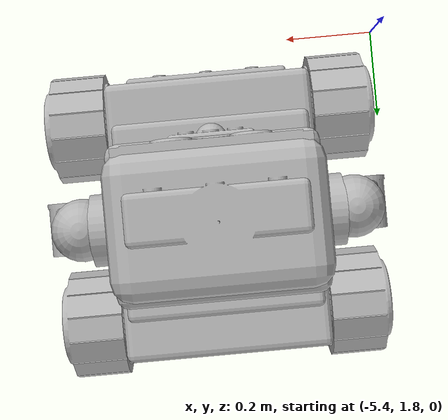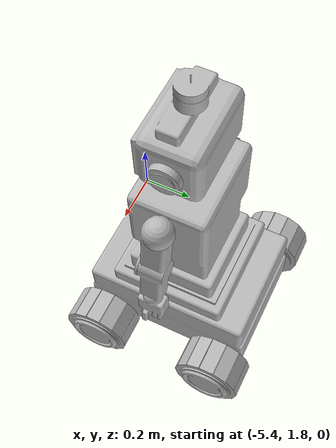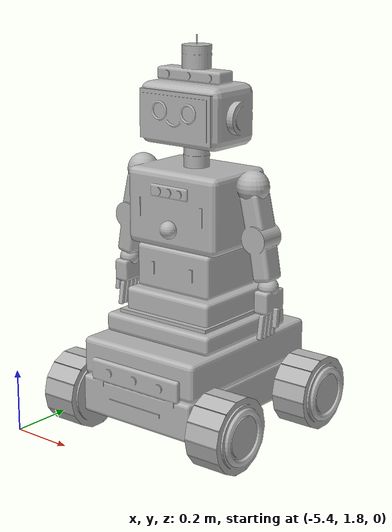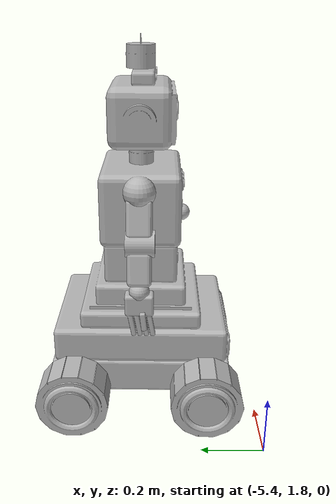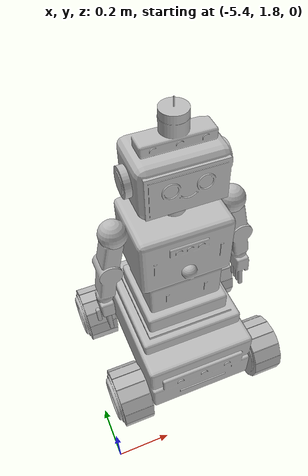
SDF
<sdf version="1.6">
 <world name="gracemo_home">
  <model name="gracemo_vira">
   <pose>-5.0 2.2 0.005 0 0 -1.570796</pose>
   <link name="base_footprint">
    <inertial>
     <pose>0.0027027027027027029 0 0.13518018018018019 0 0 0</pose>
     <mass>22.199999999999999</mass>
     <inertia>
      <ixx>0.42907927927927919</ixx>
      <ixy>0</ixy>
      <ixz>-0.0011891891891891891</ixz>
      <iyy>0.78391711711711709</iyy>
      <iyz>0</iyz>
      <izz>1.0038378378378381</izz>
     </inertia>
    </inertial>
    <collision name="base_footprint_fixed_joint_lump__chassis_collision_collision">
     <pose>0 0 0.16500000000000001 0 0 0</pose>
     <geometry><box><size>0.57999999999999996 0.40000000000000002 0.17000000000000001</size></box></geometry>
    </collision>
    <collision name="base_footprint_fixed_joint_lump__bumper_link_collision_1">
     <pose>0.29999999999999999 0 0.155 0 0 0</pose>
     <geometry><box><size>0.02 0.38 0.080000000000000002</size></box></geometry>
    </collision>
    <visual name="base_footprint_fixed_joint_lump__base_link_visual">
     <pose>0 0 0.115 0 0 0</pose>
     <geometry>
      <mesh><scale>1 1 1</scale><uri>model://gracemo_description/meshes/base_link_visual.obj</uri></mesh>
     </geometry>
    </visual>
    <sensor name="bumper_contact" type="contact">
     <contact><collision>base_footprint_fixed_joint_lump__bumper_link_collision_1</collision></contact>
     <topic>/bumper/contacts</topic>
     <update_rate>50</update_rate>
     <always_on>true</always_on>
     <pose>0.29999999999999999 0 0.155 0 0 0</pose>
    </sensor>
    <sensor name="imu" type="imu">
     <topic>/imu/data</topic>
     <update_rate>50</update_rate>
     <always_on>true</always_on>
     <pose>0 0 0.16500000000000001 0 0 0</pose>
    </sensor>
    <sensor name="tof_front_left" type="gpu_lidar">
     <topic>/tof/front_left</topic>
     <update_rate>25</update_rate>
     <ray>
      <scan>
       <horizontal>
        <samples>5</samples>
        <resolution>1</resolution>
        <min_angle>-0.14999999999999999</min_angle>
        <max_angle>0.14999999999999999</max_angle>
       </horizontal>
      </scan>
      <range><min>0.02</min><max>2</max><resolution>0.0050000000000000001</resolution></range>
     </ray>
     <always_on>true</always_on>
     <pose>0.28999999999999998 0.14999999999999999 0.155 0 0 0.26000000000000001</pose>
    </sensor>
    <sensor name="tof_front_right" type="gpu_lidar">
     <topic>/tof/front_right</topic>
     <update_rate>25</update_rate>
     <ray>
      <scan>
       <horizontal>
        <samples>5</samples>
        <resolution>1</resolution>
        <min_angle>-0.14999999999999999</min_angle>
        <max_angle>0.14999999999999999</max_angle>
       </horizontal>
      </scan>
      <range><min>0.02</min><max>2</max><resolution>0.0050000000000000001</resolution></range>
     </ray>
     <always_on>true</always_on>
     <pose>0.28999999999999998 -0.14999999999999999 0.155 0 0 -0.26000000000000001</pose>
    </sensor>
    <sensor name="tof_rear" type="gpu_lidar">
     <topic>/tof/rear</topic>
     <update_rate>25</update_rate>
     <ray>
      <scan>
       <horizontal>
        <samples>5</samples>
        <resolution>1</resolution>
        <min_angle>-0.14999999999999999</min_angle>
        <max_angle>0.14999999999999999</max_angle>
       </horizontal>
      </scan>
      <range><min>0.02</min><max>2</max><resolution>0.0050000000000000001</resolution></range>
     </ray>
     <always_on>true</always_on>
     <pose>-0.28999999999999998 0 0.155 0 0 3.1415899999999999</pose>
    </sensor>
   </link>
   <joint name="front_left_wheel_joint" type="revolute">
    <pose relative_to="base_footprint">0.22 0.28499999999999998 0.115 0 0 0</pose>
    <parent>base_footprint</parent>
    <child>front_left_wheel_link</child>
    <axis>
     <xyz>0 1 0</xyz>
     <limit><lower>-inf</lower><upper>inf</upper></limit>
     <dynamics>
      <damping>0.10000000000000001</damping>
      <friction>0.02</friction>
      <spring_reference>0</spring_reference>
      <spring_stiffness>0</spring_stiffness>
     </dynamics>
    </axis>
   </joint>
   <link name="front_left_wheel_link">
    <pose relative_to="front_left_wheel_joint">0 0 0 0 0 0</pose>
    <inertial>
     <mass>1.8</mass>
     <inertia>
      <ixx>0.00745</ixx>
      <ixy>0</ixy>
      <ixz>0</ixz>
      <iyy>0.011900000000000001</iyy>
      <iyz>0</iyz>
      <izz>0.00745</izz>
     </inertia>
    </inertial>
    <collision name="front_left_wheel_link_fixed_joint_lump__front_left_wheel_collision_collision">
     <pose>0 0 0 1.5707963000000003 0 0</pose>
     <geometry><cylinder><length>0.10000000000000001</length><radius>0.115</radius></cylinder></geometry>
    </collision>
    <visual name="front_left_wheel_link_visual">
     <geometry>
      <mesh><scale>1 1 1</scale><uri>model://gracemo_description/meshes/wheel_front_left_visual.obj</uri></mesh>
     </geometry>
    </visual>
   </link>
   <joint name="front_right_wheel_joint" type="revolute">
    <pose relative_to="base_footprint">0.22 -0.28499999999999998 0.115 0 0 0</pose>
    <parent>base_footprint</parent>
    <child>front_right_wheel_link</child>
    <axis>
     <xyz>0 1 0</xyz>
     <limit><lower>-inf</lower><upper>inf</upper></limit>
     <dynamics>
      <damping>0.10000000000000001</damping>
      <friction>0.02</friction>
      <spring_reference>0</spring_reference>
      <spring_stiffness>0</spring_stiffness>
     </dynamics>
    </axis>
   </joint>
   <link name="front_right_wheel_link">
    <pose relative_to="front_right_wheel_joint">0 0 0 0 0 0</pose>
    <inertial>
     <mass>1.8</mass>
     <inertia>
      <ixx>0.00745</ixx>
      <ixy>0</ixy>
      <ixz>0</ixz>
      <iyy>0.011900000000000001</iyy>
      <iyz>0</iyz>
      <izz>0.00745</izz>
     </inertia>
    </inertial>
    <collision name="front_right_wheel_link_fixed_joint_lump__front_right_wheel_collision_collision">
     <pose>0 0 0 1.5707963000000003 0 0</pose>
     <geometry><cylinder><length>0.10000000000000001</length><radius>0.115</radius></cylinder></geometry>
    </collision>
    <visual name="front_right_wheel_link_visual">
     <geometry>
      <mesh><scale>1 1 1</scale><uri>model://gracemo_description/meshes/wheel_front_right_visual.obj</uri></mesh>
     </geometry>
    </visual>
   </link>
   <joint name="rear_left_wheel_joint" type="revolute">
    <pose relative_to="base_footprint">-0.22 0.28499999999999998 0.115 0 0 0</pose>
    <parent>base_footprint</parent>
    <child>rear_left_wheel_link</child>
    <axis>
     <xyz>0 1 0</xyz>
     <limit><lower>-inf</lower><upper>inf</upper></limit>
     <dynamics>
      <damping>0.10000000000000001</damping>
      <friction>0.02</friction>
      <spring_reference>0</spring_reference>
      <spring_stiffness>0</spring_stiffness>
     </dynamics>
    </axis>
   </joint>
   <link name="rear_left_wheel_link">
    <pose relative_to="rear_left_wheel_joint">0 0 0 0 0 0</pose>
    <inertial>
     <mass>1.8</mass>
     <inertia>
      <ixx>0.00745</ixx>
      <ixy>0</ixy>
      <ixz>0</ixz>
      <iyy>0.011900000000000001</iyy>
      <iyz>0</iyz>
      <izz>0.00745</izz>
     </inertia>
    </inertial>
    <collision name="rear_left_wheel_link_fixed_joint_lump__rear_left_wheel_collision_collision">
     <pose>0 0 0 1.5707963000000003 0 0</pose>
     <geometry><cylinder><length>0.10000000000000001</length><radius>0.115</radius></cylinder></geometry>
    </collision>
    <visual name="rear_left_wheel_link_visual">
     <geometry>
      <mesh><scale>1 1 1</scale><uri>model://gracemo_description/meshes/wheel_rear_left_visual.obj</uri></mesh>
     </geometry>
    </visual>
   </link>
   <joint name="rear_right_wheel_joint" type="revolute">
    <pose relative_to="base_footprint">-0.22 -0.28499999999999998 0.115 0 0 0</pose>
    <parent>base_footprint</parent>
    <child>rear_right_wheel_link</child>
    <axis>
     <xyz>0 1 0</xyz>
     <limit><lower>-inf</lower><upper>inf</upper></limit>
     <dynamics>
      <damping>0.10000000000000001</damping>
      <friction>0.02</friction>
      <spring_reference>0</spring_reference>
      <spring_stiffness>0</spring_stiffness>
     </dynamics>
    </axis>
   </joint>
   <link name="rear_right_wheel_link">
    <pose relative_to="rear_right_wheel_joint">0 0 0 0 0 0</pose>
    <inertial>
     <mass>1.8</mass>
     <inertia>
      <ixx>0.00745</ixx>
      <ixy>0</ixy>
      <ixz>0</ixz>
      <iyy>0.011900000000000001</iyy>
      <iyz>0</iyz>
      <izz>0.00745</izz>
     </inertia>
    </inertial>
    <collision name="rear_right_wheel_link_fixed_joint_lump__rear_right_wheel_collision_collision">
     <pose>0 0 0 1.5707963000000003 0 0</pose>
     <geometry><cylinder><length>0.10000000000000001</length><radius>0.115</radius></cylinder></geometry>
    </collision>
    <visual name="rear_right_wheel_link_visual">
     <geometry>
      <mesh><scale>1 1 1</scale><uri>model://gracemo_description/meshes/wheel_rear_right_visual.obj</uri></mesh>
     </geometry>
    </visual>
   </link>
   <joint name="waist_pitch_joint" type="revolute">
    <pose relative_to="base_footprint">0 0 0.32000000000000001 0 0 0</pose>
    <parent>base_footprint</parent>
    <child>torso_link</child>
    <axis>
     <xyz>0 1 0</xyz>
     <limit>
      <lower>-0.52359999999999995</lower>
      <upper>0.52359999999999995</upper>
      <effort>100</effort>
      <velocity>2</velocity>
     </limit>
     <dynamics>
      <damping>1.5</damping>
      <friction>0.20000000000000001</friction>
      <spring_reference>0</spring_reference>
      <spring_stiffness>0</spring_stiffness>
     </dynamics>
    </axis>
   </joint>
   <link name="torso_link">
    <pose relative_to="waist_pitch_joint">0 0 0 0 0 0</pose>
    <inertial>
     <pose>0.0037499999999999999 0.031875000000000001 0.21562500000000001 0 0 0</pose>
     <mass>8</mass>
     <inertia>
      <ixx>0.2605687499999999</ixx>
      <ixy>-0.00669375</ixy>
      <ixz>-0.003281249999999999</ixz>
      <iyy>0.20445937499999989</iyy>
      <iyz>-0.027890624999999988</iyz>
      <izz>0.18268437500000001</izz>
     </inertia>
    </inertial>
    <collision name="torso_link_fixed_joint_lump__torso_collision_collision">
     <pose>0 0 0.23999999999999999 0 0 0</pose>
     <geometry><box><size>0.32000000000000001 0.35999999999999999 0.44</size></box></geometry>
    </collision>
    <collision name="torso_link_fixed_joint_lump__left_arm_collision_collision_1">
     <pose>0.029999999999999999 0.255 0.32500000000000001 0 0 0</pose>
     <geometry><box><size>0.10000000000000001 0.089999999999999997 0.35999999999999999</size></box></geometry>
    </collision>
    <visual name="torso_link_visual">
     <geometry>
      <mesh><scale>1 1 1</scale><uri>model://gracemo_description/meshes/torso_link_visual.obj</uri></mesh>
     </geometry>
    </visual>
    <visual name="torso_link_fixed_joint_lump__left_arm_link_visual_1">
     <pose>0 0.215 0.48499999999999999 0 0 0</pose>
     <geometry>
      <mesh><scale>1 1 1</scale><uri>model://gracemo_description/meshes/left_arm_visual.obj</uri></mesh>
     </geometry>
    </visual>
   </link>
   <joint name="neck_pan_joint" type="revolute">
    <pose relative_to="torso_link">0 0 0.58499999999999996 0 0 0</pose>
    <parent>torso_link</parent>
    <child>neck_pan_link</child>
    <axis>
     <xyz>0 0 1</xyz>
     <limit><lower>-1.5708</lower><upper>1.5708</upper><effort>15</effort><velocity>3</velocity></limit>
     <dynamics>
      <damping>0.20000000000000001</damping>
      <friction>0.050000000000000003</friction>
      <spring_reference>0</spring_reference>
      <spring_stiffness>0</spring_stiffness>
     </dynamics>
    </axis>
   </joint>
   <link name="neck_pan_link">
    <pose relative_to="neck_pan_joint">0 0 0 0 0 0</pose>
    <inertial>
     <mass>0.20000000000000001</mass>
     <inertia>
      <ixx>0.00050000000000000001</ixx>
      <ixy>0</ixy>
      <ixz>0</ixz>
      <iyy>0.00050000000000000001</iyy>
      <iyz>0</iyz>
      <izz>0.00050000000000000001</izz>
     </inertia>
    </inertial>
   </link>
   <joint name="neck_tilt_joint" type="revolute">
    <pose relative_to="neck_pan_link">0 0 0 0 0 0</pose>
    <parent>neck_pan_link</parent>
    <child>head_link</child>
    <axis>
     <xyz>0 1 0</xyz>
     <limit>
      <lower>-0.52359999999999995</lower>
      <upper>0.78539999999999999</upper>
      <effort>15</effort>
      <velocity>3</velocity>
     </limit>
     <dynamics>
      <damping>0.20000000000000001</damping>
      <friction>0.050000000000000003</friction>
      <spring_reference>0</spring_reference>
      <spring_stiffness>0</spring_stiffness>
     </dynamics>
    </axis>
   </joint>
   <link name="head_link">
    <pose relative_to="neck_tilt_joint">0 0 0 0 0 0</pose>
    <inertial>
     <pose>0.005333333333333334 0 0.1108333333333333 0 0 0</pose>
     <mass>1.6799999999999999</mass>
     <inertia>
      <ixx>0.01491083333333333</ixx>
      <ixy>0</ixy>
      <ixz>-3.7333333333333012e-05</ixz>
      <iyy>0.015866566666666668</iyy>
      <iyz>0</iyz>
      <izz>0.011155733333333331</izz>
     </inertia>
    </inertial>
    <collision name="head_link_fixed_joint_lump__head_collision_collision">
     <pose>0 0 0.10000000000000001 0 0 0</pose>
     <geometry><sphere><radius>0.13</radius></sphere></geometry>
    </collision>
    <visual name="head_link_visual">
     <geometry>
      <mesh><scale>1 1 1</scale><uri>model://gracemo_description/meshes/head_link_visual.obj</uri></mesh>
     </geometry>
    </visual>
    <sensor name="camera" type="camera">
     <topic>/camera/image_raw</topic>
     <update_rate>30</update_rate>
     <camera>
      <horizontal_fov>1.1499999999999999</horizontal_fov>
      <image><width>640</width><height>480</height><format>R8G8B8</format></image>
      <clip><near>0.050000000000000003</near><far>20</far></clip>
     </camera>
     <always_on>true</always_on>
     <visualize>true</visualize>
     <pose>0.112 0 0.115 0 0 0</pose>
    </sensor>
    <sensor name="depth_camera" type="depth_camera">
     <topic>/camera/depth_image</topic>
     <update_rate>15</update_rate>
     <camera>
      <horizontal_fov>1.1499999999999999</horizontal_fov>
      <image><width>320</width><height>240</height></image>
      <clip><near>0.10000000000000001</near><far>10</far></clip>
     </camera>
     <always_on>true</always_on>
     <pose>0.112 0 0.115 0 0 0</pose>
    </sensor>
    <sensor name="lidar" type="gpu_lidar">
     <topic>/scan</topic>
     <update_rate>15</update_rate>
     <ray>
      <scan>
       <horizontal>
        <samples>360</samples>
        <resolution>1</resolution>
        <min_angle>-3.1415899999999999</min_angle>
        <max_angle>3.1415899999999999</max_angle>
       </horizontal>
      </scan>
      <range><min>0.14999999999999999</min><max>12</max><resolution>0.01</resolution></range>
     </ray>
     <always_on>true</always_on>
     <visualize>true</visualize>
     <pose>0 0 0.27000000000000002 0 0 0</pose>
    </sensor>
   </link>
   <joint name="right_shoulder_yaw_joint" type="revolute">
    <pose relative_to="torso_link">0 -0.215 0.48499999999999999 0 0 0</pose>
    <parent>torso_link</parent>
    <child>right_shoulder_yaw_link</child>
    <axis>
     <xyz>0 0 1</xyz>
     <limit><lower>-1.5708</lower><upper>1.5708</upper><effort>50</effort><velocity>3</velocity></limit>
     <dynamics>
      <damping>1.5</damping>
      <friction>0.050000000000000003</friction>
      <spring_reference>0</spring_reference>
      <spring_stiffness>0</spring_stiffness>
     </dynamics>
    </axis>
   </joint>
   <link name="right_shoulder_yaw_link">
    <pose relative_to="right_shoulder_yaw_joint">0 0 0 0 0 0</pose>
    <inertial>
     <mass>0.20000000000000001</mass>
     <inertia>
      <ixx>0.00020000000000000001</ixx>
      <ixy>0</ixy>
      <ixz>0</ixz>
      <iyy>0.00020000000000000001</iyy>
      <iyz>0</iyz>
      <izz>0.00020000000000000001</izz>
     </inertia>
    </inertial>
    <collision name="right_shoulder_yaw_link_collision">
     <geometry><sphere><radius>0.037999999999999999</radius></sphere></geometry>
    </collision>
    <visual name="right_shoulder_yaw_link_visual">
     <geometry><sphere><radius>0.040000000000000001</radius></sphere></geometry>
     <material><diffuse>0 0 0 1</diffuse><ambient>0 0 0 1</ambient></material>
    </visual>
   </link>
   <joint name="right_shoulder_pitch_joint" type="revolute">
    <pose relative_to="right_shoulder_yaw_link">0 0 0 0 0 0</pose>
    <parent>right_shoulder_yaw_link</parent>
    <child>right_shoulder_pitch_link</child>
    <axis>
     <xyz>0 1 0</xyz>
     <limit>
      <lower>-1.5708</lower>
      <upper>2.0943999999999998</upper>
      <effort>50</effort>
      <velocity>3</velocity>
     </limit>
     <dynamics>
      <damping>1.5</damping>
      <friction>0.050000000000000003</friction>
      <spring_reference>0</spring_reference>
      <spring_stiffness>0</spring_stiffness>
     </dynamics>
    </axis>
   </joint>
   <link name="right_shoulder_pitch_link">
    <pose relative_to="right_shoulder_pitch_joint">0 0 0 0 0 0</pose>
    <inertial>
     <mass>0.20000000000000001</mass>
     <inertia>
      <ixx>0.00020000000000000001</ixx>
      <ixy>0</ixy>
      <ixz>0</ixz>
      <iyy>0.00020000000000000001</iyy>
      <iyz>0</iyz>
      <izz>0.00020000000000000001</izz>
     </inertia>
    </inertial>
    <collision name="right_shoulder_pitch_link_collision">
     <geometry><sphere><radius>0.035999999999999997</radius></sphere></geometry>
    </collision>
    <visual name="right_shoulder_pitch_link_visual">
     <geometry><sphere><radius>0.037999999999999999</radius></sphere></geometry>
     <material><diffuse>0 0 0 1</diffuse><ambient>0 0 0 1</ambient></material>
    </visual>
   </link>
   <joint name="right_shoulder_roll_joint" type="revolute">
    <pose relative_to="right_shoulder_pitch_link">0 0 0 0 0 0</pose>
    <parent>right_shoulder_pitch_link</parent>
    <child>right_upper_arm_link</child>
    <axis>
     <xyz>1 0 0</xyz>
     <limit><lower>-1.5708</lower><upper>1.5708</upper><effort>40</effort><velocity>3</velocity></limit>
     <dynamics>
      <damping>1</damping>
      <friction>0.050000000000000003</friction>
      <spring_reference>0</spring_reference>
      <spring_stiffness>0</spring_stiffness>
     </dynamics>
    </axis>
   </joint>
   <link name="right_upper_arm_link">
    <pose relative_to="right_shoulder_roll_joint">0 0 0 0 0 0</pose>
    <inertial>
     <mass>0.5</mass>
     <inertia>
      <ixx>0.001</ixx>
      <ixy>0</ixy>
      <ixz>0</ixz>
      <iyy>0.001</iyy>
      <iyz>0</iyz>
      <izz>0.00050000000000000001</izz>
     </inertia>
    </inertial>
    <collision name="right_upper_arm_link_collision">
     <pose>0 0 -0.074999999999999997 0 0 0</pose>
     <geometry>
      <cylinder><length>0.14999999999999999</length><radius>0.035000000000000003</radius></cylinder>
     </geometry>
    </collision>
    <visual name="right_upper_arm_link_visual">
     <geometry>
      <mesh><scale>1 1 1</scale><uri>model://gracemo_description/meshes/right_upper_arm_visual.obj</uri></mesh>
     </geometry>
    </visual>
   </link>
   <joint name="right_elbow_pitch_joint" type="revolute">
    <pose relative_to="right_upper_arm_link">0 -0.035000000000000003 -0.14999999999999999 0 0 0</pose>
    <parent>right_upper_arm_link</parent>
    <child>right_forearm_link</child>
    <axis>
     <xyz>0 1 0</xyz>
     <limit><lower>-2.0943999999999998</lower><upper>0</upper><effort>30</effort><velocity>3</velocity></limit>
     <dynamics>
      <damping>1</damping>
      <friction>0.050000000000000003</friction>
      <spring_reference>0</spring_reference>
      <spring_stiffness>0</spring_stiffness>
     </dynamics>
    </axis>
   </joint>
   <link name="right_forearm_link">
    <pose relative_to="right_elbow_pitch_joint">0 0 0 0 0 0</pose>
    <inertial>
     <mass>0.40000000000000002</mass>
     <inertia>
      <ixx>0.00080000000000000004</ixx>
      <ixy>0</ixy>
      <ixz>0</ixz>
      <iyy>0.00080000000000000004</iyy>
      <iyz>0</iyz>
      <izz>0.00029999999999999997</izz>
     </inertia>
    </inertial>
    <collision name="right_forearm_link_collision">
     <pose>0 -0.02 -0.074999999999999997 0 0 0</pose>
     <geometry>
      <cylinder><length>0.14999999999999999</length><radius>0.029999999999999999</radius></cylinder>
     </geometry>
    </collision>
    <visual name="right_forearm_link_visual">
     <geometry>
      <mesh><scale>1 1 1</scale><uri>model://gracemo_description/meshes/right_forearm_visual.obj</uri></mesh>
     </geometry>
    </visual>
   </link>
   <joint name="right_wrist_pitch_joint" type="revolute">
    <pose relative_to="right_forearm_link">0 -0.025999999999999999 -0.14999999999999999 0 0 0</pose>
    <parent>right_forearm_link</parent>
    <child>right_wrist_pitch_link</child>
    <axis>
     <xyz>0 1 0</xyz>
     <limit><lower>-1.5708</lower><upper>1.5708</upper><effort>15</effort><velocity>4</velocity></limit>
     <dynamics>
      <damping>0.5</damping>
      <friction>0.02</friction>
      <spring_reference>0</spring_reference>
      <spring_stiffness>0</spring_stiffness>
     </dynamics>
    </axis>
   </joint>
   <link name="right_wrist_pitch_link">
    <pose relative_to="right_wrist_pitch_joint">0 0 0 0 0 0</pose>
    <inertial>
     <mass>0.10000000000000001</mass>
     <inertia><ixx>0.0001</ixx><ixy>0</ixy><ixz>0</ixz><iyy>0.0001</iyy><iyz>0</iyz><izz>0.0001</izz></inertia>
    </inertial>
    <collision name="right_wrist_pitch_link_collision">
     <geometry><sphere><radius>0.024</radius></sphere></geometry>
    </collision>
    <visual name="right_wrist_pitch_link_visual">
     <geometry><sphere><radius>0.025000000000000001</radius></sphere></geometry>
     <material><diffuse>0 0 0 1</diffuse><ambient>0 0 0 1</ambient></material>
    </visual>
   </link>
   <joint name="right_wrist_yaw_joint" type="revolute">
    <pose relative_to="right_wrist_pitch_link">0 0 0 0 0 0</pose>
    <parent>right_wrist_pitch_link</parent>
    <child>right_wrist_yaw_link</child>
    <axis>
     <xyz>0 0 1</xyz>
     <limit><lower>-1.5708</lower><upper>1.5708</upper><effort>15</effort><velocity>4</velocity></limit>
     <dynamics>
      <damping>0.5</damping>
      <friction>0.02</friction>
      <spring_reference>0</spring_reference>
      <spring_stiffness>0</spring_stiffness>
     </dynamics>
    </axis>
   </joint>
   <link name="right_wrist_yaw_link">
    <pose relative_to="right_wrist_yaw_joint">0 0 0 0 0 0</pose>
    <inertial>
     <mass>0.080000000000000002</mass>
     <inertia>
      <ixx>5.0000000000000002e-05</ixx>
      <ixy>0</ixy>
      <ixz>0</ixz>
      <iyy>5.0000000000000002e-05</iyy>
      <iyz>0</iyz>
      <izz>5.0000000000000002e-05</izz>
     </inertia>
    </inertial>
    <collision name="right_wrist_yaw_link_collision">
     <geometry><cylinder><length>0.014999999999999999</length><radius>0.02</radius></cylinder></geometry>
    </collision>
    <visual name="right_wrist_yaw_link_visual">
     <geometry><cylinder><length>0.014999999999999999</length><radius>0.02</radius></cylinder></geometry>
     <material><diffuse>0 0 0 1</diffuse><ambient>0 0 0 1</ambient></material>
    </visual>
   </link>
   <joint name="right_wrist_roll_joint" type="revolute">
    <pose relative_to="right_wrist_yaw_link">0 0 0 0 0 0</pose>
    <parent>right_wrist_yaw_link</parent>
    <child>right_palm_link</child>
    <axis>
     <xyz>1 0 0</xyz>
     <limit>
      <lower>-3.1415000000000002</lower>
      <upper>3.1415000000000002</upper>
      <effort>10</effort>
      <velocity>4</velocity>
     </limit>
     <dynamics>
      <damping>0.29999999999999999</damping>
      <friction>0.02</friction>
      <spring_reference>0</spring_reference>
      <spring_stiffness>0</spring_stiffness>
     </dynamics>
    </axis>
   </joint>
   <link name="right_palm_link">
    <pose relative_to="right_wrist_roll_joint">0 0 0 0 0 0</pose>
    <inertial>
     <mass>0.14999999999999999</mass>
     <inertia>
      <ixx>0.00020000000000000001</ixx>
      <ixy>0</ixy>
      <ixz>0</ixz>
      <iyy>0.00020000000000000001</iyy>
      <iyz>0</iyz>
      <izz>0.00020000000000000001</izz>
     </inertia>
    </inertial>
    <collision name="right_palm_link_collision">
     <pose>0 0 -0.029999999999999999 0 0 0</pose>
     <geometry><box><size>0.050000000000000003 0.059999999999999998 0.059999999999999998</size></box></geometry>
    </collision>
    <visual name="right_palm_link_visual">
     <geometry>
      <mesh><scale>1 1 1</scale><uri>model://gracemo_description/meshes/right_palm_visual.obj</uri></mesh>
     </geometry>
    </visual>
   </link>
   <joint name="finger_left_joint" type="prismatic">
    <pose relative_to="right_palm_link">0 -0.002 -0.080000000000000002 0 0 0</pose>
    <parent>right_palm_link</parent>
    <child>finger_left_link</child>
    <axis>
     <xyz>0 1 0</xyz>
     <limit>
      <lower>0</lower>
      <upper>0.035000000000000003</upper>
      <effort>20</effort>
      <velocity>0.10000000000000001</velocity>
     </limit>
     <dynamics>
      <damping>1</damping>
      <friction>0.050000000000000003</friction>
      <spring_reference>0</spring_reference>
      <spring_stiffness>0</spring_stiffness>
     </dynamics>
    </axis>
   </joint>
   <link name="finger_left_link">
    <pose relative_to="finger_left_joint">0 0 0 0 0 0</pose>
    <inertial>
     <mass>0.050000000000000003</mass>
     <inertia>
      <ixx>2.0000000000000002e-05</ixx>
      <ixy>0</ixy>
      <ixz>0</ixz>
      <iyy>2.0000000000000002e-05</iyy>
      <iyz>0</iyz>
      <izz>2.0000000000000002e-05</izz>
     </inertia>
    </inertial>
    <collision name="finger_left_link_collision">
     <pose>0 0 -0.02 0 0 0</pose>
     <geometry><box><size>0.02 0.050000000000000003 0.040000000000000001</size></box></geometry>
    </collision>
    <visual name="finger_left_link_visual">
     <geometry>
      <mesh><scale>1 1 1</scale><uri>model://gracemo_description/meshes/right_finger_visual.obj</uri></mesh>
     </geometry>
    </visual>
    <sensor name="hand_contact_left" type="contact">
     <contact><collision>finger_left_collision</collision><topic>__default_topic__</topic></contact>
     <topic>/hand/contacts/left</topic>
     <update_rate>50</update_rate>
    </sensor>
   </link>
   <joint name="finger_right_joint" type="prismatic">
    <pose relative_to="right_palm_link">0 -0.036999999999999998 -0.055 0 0 0</pose>
    <parent>right_palm_link</parent>
    <child>finger_right_link</child>
    <axis>
     <xyz>0 -1 0</xyz>
     <limit>
      <lower>0</lower>
      <upper>0.035000000000000003</upper>
      <effort>20</effort>
      <velocity>0.10000000000000001</velocity>
     </limit>
     <dynamics>
      <damping>1</damping>
      <friction>0.050000000000000003</friction>
      <spring_reference>0</spring_reference>
      <spring_stiffness>0</spring_stiffness>
     </dynamics>
    </axis>
   </joint>
   <link name="finger_right_link">
    <pose relative_to="finger_right_joint">0 0 0 0 0 0</pose>
    <inertial>
     <mass>0.029999999999999999</mass>
     <inertia>
      <ixx>1.0000000000000001e-05</ixx>
      <ixy>0</ixy>
      <ixz>0</ixz>
      <iyy>1.0000000000000001e-05</iyy>
      <iyz>0</iyz>
      <izz>1.0000000000000001e-05</izz>
     </inertia>
    </inertial>
    <collision name="finger_right_link_collision">
     <pose>0 0 -0.02 0 0 0</pose>
     <geometry><box><size>0.02 0.02 0.040000000000000001</size></box></geometry>
    </collision>
    <visual name="finger_right_link_visual">
     <geometry>
      <mesh><scale>1 1 1</scale><uri>model://gracemo_description/meshes/right_thumb_visual.obj</uri></mesh>
     </geometry>
    </visual>
    <sensor name="hand_contact_right" type="contact">
     <contact><collision>finger_right_collision</collision><topic>__default_topic__</topic></contact>
     <topic>/hand/contacts/right</topic>
     <update_rate>50</update_rate>
    </sensor>
   </link>
   <plugin name="gz::sim::systems::Contact" filename="gz-sim-contact-system"/>
   <plugin name="gz::sim::systems::JointStatePublisher" filename="gz-sim-joint-state-publisher-system"/>
   <plugin name="gz::sim::systems::DiffDrive" filename="gz-sim-diff-drive-system">
    <left_joint>left_wheel_joint</left_joint>
    <right_joint>right_wheel_joint</right_joint>
    <wheel_separation>0.34</wheel_separation>
    <wheel_radius>0.065</wheel_radius>
    <max_wheel_torque>150.0</max_wheel_torque>
    <max_linear_acceleration>5.0</max_linear_acceleration>
    <max_angular_acceleration>8.0</max_angular_acceleration>
    <min_linear_velocity>-1.5</min_linear_velocity>
    <max_linear_velocity>1.5</max_linear_velocity>
    <min_angular_velocity>-3.0</min_angular_velocity>
    <max_angular_velocity>3.0</max_angular_velocity>
    <topic>/cmd_vel</topic>
    <odom_topic>/odom</odom_topic>
    <tf_topic>/tf</tf_topic>
    <frame_id>odom</frame_id>
    <child_frame_id>base_footprint</child_frame_id>
    <odom_publish_frequency>50</odom_publish_frequency>
   </plugin>
   <plugin name="gz::sim::systems::JointPositionController" filename="gz-sim-joint-position-controller-system">
    <joint_name>neck_pan_joint</joint_name>
    <topic>/head/pan/cmd_pos</topic>
    <initial_position>0.0</initial_position>
    <p_gain>180</p_gain>
    <i_gain>2</i_gain>
    <d_gain>12</d_gain>
    <cmd_max>20</cmd_max>
    <cmd_min>-20</cmd_min>
   </plugin>
   <plugin name="gz::sim::systems::JointPositionController" filename="gz-sim-joint-position-controller-system">
    <joint_name>neck_tilt_joint</joint_name>
    <topic>/head/tilt/cmd_pos</topic>
    <initial_position>0.0</initial_position>
    <p_gain>180</p_gain>
    <i_gain>2</i_gain>
    <d_gain>12</d_gain>
    <cmd_max>20</cmd_max>
    <cmd_min>-20</cmd_min>
   </plugin>
   <plugin name="gz::sim::systems::JointPositionController" filename="gz-sim-joint-position-controller-system">
    <joint_name>right_shoulder_yaw_joint</joint_name>
    <topic>/arm/joint_1/cmd_pos</topic>
    <initial_position>0.0</initial_position>
    <p_gain>800</p_gain>
    <i_gain>10</i_gain>
    <d_gain>30</d_gain>
    <cmd_max>50</cmd_max>
    <cmd_min>-50</cmd_min>
   </plugin>
   <plugin name="gz::sim::systems::JointPositionController" filename="gz-sim-joint-position-controller-system">
    <joint_name>right_shoulder_pitch_joint</joint_name>
    <topic>/arm/joint_2/cmd_pos</topic>
    <initial_position>0.90</initial_position>
    <p_gain>800</p_gain>
    <i_gain>10</i_gain>
    <d_gain>30</d_gain>
    <cmd_max>50</cmd_max>
    <cmd_min>-50</cmd_min>
   </plugin>
   <plugin name="gz::sim::systems::JointPositionController" filename="gz-sim-joint-position-controller-system">
    <joint_name>right_shoulder_roll_joint</joint_name>
    <topic>/arm/joint_3/cmd_pos</topic>
    <initial_position>0.20</initial_position>
    <p_gain>800</p_gain>
    <i_gain>10</i_gain>
    <d_gain>30</d_gain>
    <cmd_max>50</cmd_max>
    <cmd_min>-50</cmd_min>
   </plugin>
   <plugin name="gz::sim::systems::JointPositionController" filename="gz-sim-joint-position-controller-system">
    <joint_name>right_elbow_pitch_joint</joint_name>
    <topic>/arm/joint_4/cmd_pos</topic>
    <initial_position>-1.25</initial_position>
    <p_gain>600</p_gain>
    <i_gain>8</i_gain>
    <d_gain>20</d_gain>
    <cmd_max>40</cmd_max>
    <cmd_min>-40</cmd_min>
   </plugin>
   <plugin name="gz::sim::systems::JointPositionController" filename="gz-sim-joint-position-controller-system">
    <joint_name>right_wrist_pitch_joint</joint_name>
    <topic>/arm/joint_5/cmd_pos</topic>
    <initial_position>0.60</initial_position>
    <p_gain>400</p_gain>
    <i_gain>5</i_gain>
    <d_gain>10</d_gain>
    <cmd_max>25</cmd_max>
    <cmd_min>-25</cmd_min>
   </plugin>
   <plugin name="gz::sim::systems::JointPositionController" filename="gz-sim-joint-position-controller-system">
    <joint_name>right_wrist_yaw_joint</joint_name>
    <topic>/arm/joint_6/cmd_pos</topic>
    <initial_position>0.0</initial_position>
    <p_gain>400</p_gain>
    <i_gain>5</i_gain>
    <d_gain>10</d_gain>
    <cmd_max>25</cmd_max>
    <cmd_min>-25</cmd_min>
   </plugin>
   <plugin name="gz::sim::systems::JointPositionController" filename="gz-sim-joint-position-controller-system">
    <joint_name>right_wrist_roll_joint</joint_name>
    <topic>/arm/joint_7/cmd_pos</topic>
    <initial_position>0.0</initial_position>
    <p_gain>400</p_gain>
    <i_gain>5</i_gain>
    <d_gain>10</d_gain>
    <cmd_max>25</cmd_max>
    <cmd_min>-25</cmd_min>
   </plugin>
   <plugin name="gz::sim::systems::JointPositionController" filename="gz-sim-joint-position-controller-system">
    <joint_name>finger_left_joint</joint_name>
    <topic>/hand/left_finger/cmd_pos</topic>
    <initial_position>0.001</initial_position>
    <p_gain>2200</p_gain>
    <i_gain>15</i_gain>
    <d_gain>30</d_gain>
    <cmd_max>120</cmd_max>
    <cmd_min>-120</cmd_min>
   </plugin>
   <plugin name="gz::sim::systems::JointPositionController" filename="gz-sim-joint-position-controller-system">
    <joint_name>finger_right_joint</joint_name>
    <topic>/hand/right_finger/cmd_pos</topic>
    <initial_position>0.001</initial_position>
    <p_gain>2200</p_gain>
    <i_gain>15</i_gain>
    <d_gain>30</d_gain>
    <cmd_max>120</cmd_max>
    <cmd_min>-120</cmd_min>
   </plugin>
   <frame name="bumper_joint" attached_to="base_link">
    <pose>0.29999999999999999 0 0.040000000000000001 0 0 0</pose>
   </frame>
   <frame name="bumper_link" attached_to="bumper_joint"/>
   <frame name="imu_joint" attached_to="base_link"><pose>0 0 0.050000000000000003 0 0 0</pose></frame>
   <frame name="imu_link" attached_to="imu_joint"/>
   <frame name="tof_front_left_joint" attached_to="base_link">
    <pose>0.28999999999999998 0.14999999999999999 0.040000000000000001 0 0 0.26000000000000001</pose>
   </frame>
   <frame name="tof_front_left_link" attached_to="tof_front_left_joint"/>
   <frame name="tof_front_right_joint" attached_to="base_link">
    <pose>0.28999999999999998 -0.14999999999999999 0.040000000000000001 0 0 -0.26000000000000001</pose>
   </frame>
   <frame name="tof_front_right_link" attached_to="tof_front_right_joint"/>
   <frame name="tof_rear_joint" attached_to="base_link">
    <pose>-0.28999999999999998 0 0.040000000000000001 0 0 3.1415899999999999</pose>
   </frame>
   <frame name="tof_rear_link" attached_to="tof_rear_joint"/>
   <frame name="base_footprint_joint" attached_to="base_footprint"><pose>0 0 0.115 0 0 0</pose></frame>
   <frame name="base_link" attached_to="base_footprint_joint"/>
   <frame name="left_arm_joint" attached_to="torso_link"><pose>0 0.215 0.48499999999999999 0 0 0</pose></frame>
   <frame name="left_arm_link" attached_to="left_arm_joint"/>
   <frame name="camera_optical_joint" attached_to="camera_link">
    <pose>0 0 0 -1.5707963000000003 5.5511151231257827e-17 -1.5707963000000003</pose>
   </frame>
   <frame name="camera_optical_link" attached_to="camera_optical_joint"/>
   <frame name="camera_joint" attached_to="head_link"><pose>0.112 0 0.115 0 0 0</pose></frame>
   <frame name="camera_link" attached_to="camera_joint"/>
   <frame name="lidar_joint" attached_to="head_link"><pose>0 0 0.27000000000000002 0 0 0</pose></frame>
   <frame name="lidar_link" attached_to="lidar_joint"/>
  </model>
 </world>
</sdf>
